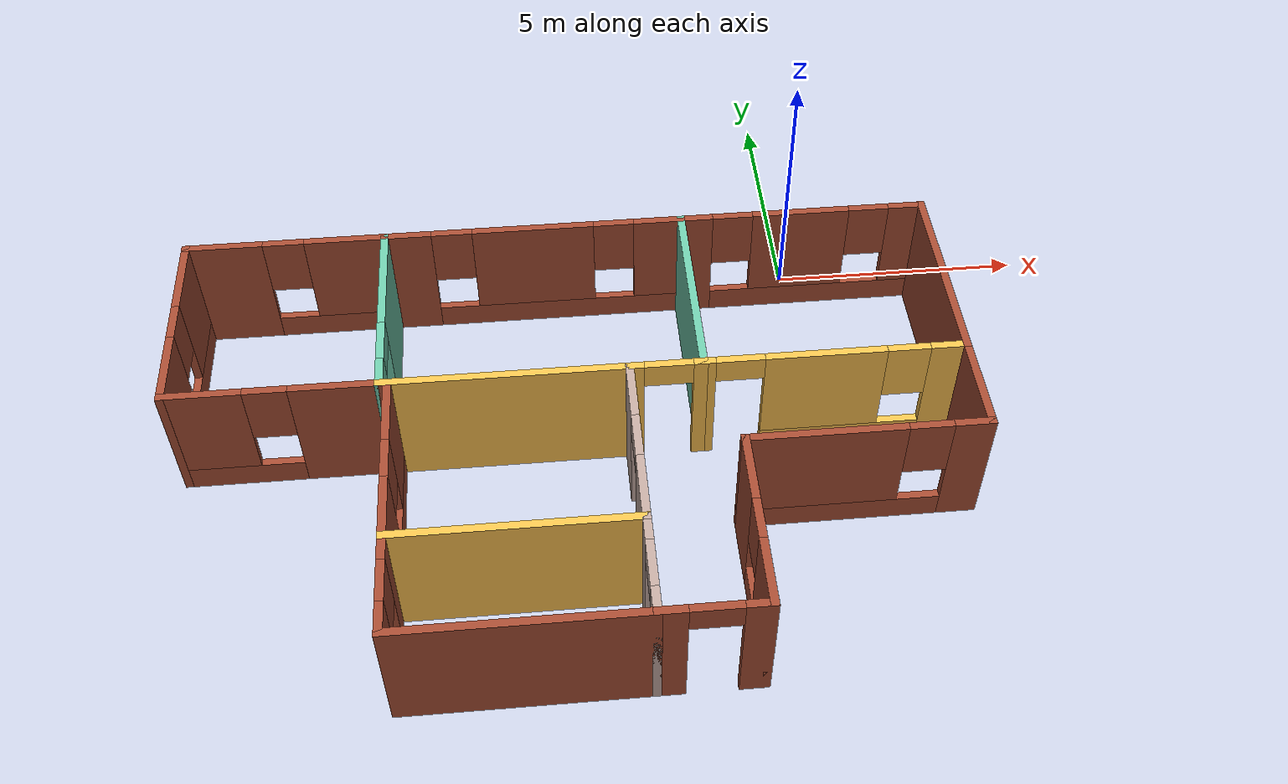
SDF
<?xml version='1.0'?>
<sdf version='1.6'>
  <model name='my_house'>
    <pose frame=''>-4.685 -4.8725 0 0 -0 0</pose>
    <link name='Wall_0'>
      <pose frame=''>-5.35 4.2525 0 0 -0 0</pose>
      <visual name='Wall_0_Visual_0'>
        <pose frame=''>-1.22425 0 1.25 0 -0 0</pose>
        <geometry>
          <box>
            <size>1.5515 0.15 2.5</size>
          </box>
        </geometry>
        <material>
          <script>
            <uri>file://media/materials/scripts/gazebo.material</uri>
            <name>Gazebo/Bricks</name>
          </script>
          <ambient>1 1 1 1</ambient>
        </material>
        <meta>
          <layer>0</layer>
        </meta>
      </visual>
      <collision name='Wall_0_Collision_0'>
        <geometry>
          <box>
            <size>1.5515 0.15 2.5</size>
          </box>
        </geometry>
        <pose frame=''>-1.22425 0 1.25 0 -0 0</pose>
      </collision>
      <visual name='Wall_0_Visual_1'>
        <pose frame=''>0.77575 0 0.25 0 -0 0</pose>
        <geometry>
          <box>
            <size>2.4485 0.15 0.5</size>
          </box>
        </geometry>
        <material>
          <script>
            <uri>file://media/materials/scripts/gazebo.material</uri>
            <name>Gazebo/Bricks</name>
          </script>
          <ambient>1 1 1 1</ambient>
        </material>
        <meta>
          <layer>0</layer>
        </meta>
      </visual>
      <collision name='Wall_0_Collision_1'>
        <geometry>
          <box>
            <size>2.4485 0.15 0.5</size>
          </box>
        </geometry>
        <pose frame=''>0.77575 0 0.25 0 -0 0</pose>
      </collision>
      <visual name='Wall_0_Visual_2'>
        <pose frame=''>1.17575 0 1.5 0 -0 0</pose>
        <geometry>
          <box>
            <size>1.6485 0.15 2</size>
          </box>
        </geometry>
        <material>
          <script>
            <uri>file://media/materials/scripts/gazebo.material</uri>
            <name>Gazebo/Bricks</name>
          </script>
          <ambient>1 1 1 1</ambient>
        </material>
        <meta>
          <layer>0</layer>
        </meta>
      </visual>
      <collision name='Wall_0_Collision_2'>
        <geometry>
          <box>
            <size>1.6485 0.15 2</size>
          </box>
        </geometry>
        <pose frame=''>1.17575 0 1.5 0 -0 0</pose>
      </collision>
      <visual name='Wall_0_Visual_3'>
        <pose frame=''>-0.0485 0 1.9 0 -0 0</pose>
        <geometry>
          <box>
            <size>0.8 0.15 1.2</size>
          </box>
        </geometry>
        <material>
          <script>
            <uri>file://media/materials/scripts/gazebo.material</uri>
            <name>Gazebo/Bricks</name>
          </script>
          <ambient>1 1 1 1</ambient>
        </material>
        <meta>
          <layer>0</layer>
        </meta>
      </visual>
      <collision name='Wall_0_Collision_3'>
        <geometry>
          <box>
            <size>0.8 0.15 1.2</size>
          </box>
        </geometry>
        <pose frame=''>-0.0485 0 1.9 0 -0 0</pose>
      </collision>
    </link>
    <link name='Wall_1'>
      <pose frame=''>-3.425 2.3275 0 0 -0 -1.5708</pose>
      <visual name='Wall_1_Visual_0'>
        <pose frame=''>-0.788444 0 1.25 0 -0 0</pose>
        <geometry>
          <box>
            <size>2.42311 0.15 2.5</size>
          </box>
        </geometry>
        <material>
          <script>
            <uri>file://media/materials/scripts/gazebo.material</uri>
            <name>Gazebo/Grey</name>
          </script>
          <ambient>0.435294 0.796078 0.67451 1</ambient>
        </material>
        <meta>
          <layer>0</layer>
        </meta>
      </visual>
      <collision name='Wall_1_Collision_0'>
        <geometry>
          <box>
            <size>2.42311 0.15 2.5</size>
          </box>
        </geometry>
        <pose frame=''>-0.788444 0 1.25 0 -0 0</pose>
      </collision>
      <visual name='Wall_1_Visual_1'>
        <pose frame=''>1.66156 0 1.25 0 -0 0</pose>
        <geometry>
          <box>
            <size>0.676889 0.15 2.5</size>
          </box>
        </geometry>
        <material>
          <script>
            <uri>file://media/materials/scripts/gazebo.material</uri>
            <name>Gazebo/Grey</name>
          </script>
          <ambient>0.435294 0.796078 0.67451 1</ambient>
        </material>
        <meta>
          <layer>0</layer>
        </meta>
      </visual>
      <collision name='Wall_1_Collision_1'>
        <geometry>
          <box>
            <size>0.676889 0.15 2.5</size>
          </box>
        </geometry>
        <pose frame=''>1.66156 0 1.25 0 -0 0</pose>
      </collision>
      <visual name='Wall_1_Visual_2'>
        <pose frame=''>0.873111 0 2.25 0 -0 0</pose>
        <geometry>
          <box>
            <size>0.9 0.15 0.5</size>
          </box>
        </geometry>
        <material>
          <script>
            <uri>file://media/materials/scripts/gazebo.material</uri>
            <name>Gazebo/Grey</name>
          </script>
          <ambient>0.435294 0.796078 0.67451 1</ambient>
        </material>
        <meta>
          <layer>0</layer>
        </meta>
      </visual>
      <collision name='Wall_1_Collision_2'>
        <geometry>
          <box>
            <size>0.9 0.15 0.5</size>
          </box>
        </geometry>
        <pose frame=''>0.873111 0 2.25 0 -0 0</pose>
      </collision>
    </link>
    <link name='Wall_10'>
      <collision name='Wall_10_Collision'>
        <geometry>
          <box>
            <size>4 0.15 2.5</size>
          </box>
        </geometry>
        <pose frame=''>0 0 1.25 0 -0 0</pose>
      </collision>
      <visual name='Wall_10_Visual'>
        <pose frame=''>0 0 1.25 0 -0 0</pose>
        <geometry>
          <box>
            <size>4 0.15 2.5</size>
          </box>
        </geometry>
        <material>
          <script>
            <uri>file://media/materials/scripts/gazebo.material</uri>
            <name>Gazebo/Bricks</name>
          </script>
          <ambient>1 1 1 1</ambient>
        </material>
        <meta>
          <layer>0</layer>
        </meta>
      </visual>
      <pose frame=''>7.275 2.3275 0 0 -0 -1.5708</pose>
    </link>
    <link name='Wall_11'>
      <pose frame=''>4.85 0.4025 0 0 -0 3.14159</pose>
      <visual name='Wall_11_Visual_0'>
        <pose frame=''>-2.12676 0 1.25 0 -0 0</pose>
        <geometry>
          <box>
            <size>0.746489 0.15 2.5</size>
          </box>
        </geometry>
        <material>
          <script>
            <uri>file://media/materials/scripts/gazebo.material</uri>
            <name>Gazebo/Grey</name>
          </script>
          <ambient>1 0.764706 0.305882 1</ambient>
        </material>
        <meta>
          <layer>0</layer>
        </meta>
      </visual>
      <collision name='Wall_11_Collision_0'>
        <geometry>
          <box>
            <size>0.746489 0.15 2.5</size>
          </box>
        </geometry>
        <pose frame=''>-2.12676 0 1.25 0 -0 0</pose>
      </collision>
      <visual name='Wall_11_Visual_1'>
        <pose frame=''>2.35099 0 1.25 0 -0 0</pose>
        <geometry>
          <box>
            <size>0.298021 0.15 2.5</size>
          </box>
        </geometry>
        <material>
          <script>
            <uri>file://media/materials/scripts/gazebo.material</uri>
            <name>Gazebo/Grey</name>
          </script>
          <ambient>1 0.764706 0.305882 1</ambient>
        </material>
        <meta>
          <layer>0</layer>
        </meta>
      </visual>
      <collision name='Wall_11_Collision_1'>
        <geometry>
          <box>
            <size>0.298021 0.15 2.5</size>
          </box>
        </geometry>
        <pose frame=''>2.35099 0 1.25 0 -0 0</pose>
      </collision>
      <visual name='Wall_11_Visual_2'>
        <pose frame=''>-0.225766 0 0.25 0 -0 0</pose>
        <geometry>
          <box>
            <size>3.05549 0.15 0.5</size>
          </box>
        </geometry>
        <material>
          <script>
            <uri>file://media/materials/scripts/gazebo.material</uri>
            <name>Gazebo/Grey</name>
          </script>
          <ambient>1 0.764706 0.305882 1</ambient>
        </material>
        <meta>
          <layer>0</layer>
        </meta>
      </visual>
      <collision name='Wall_11_Collision_2'>
        <geometry>
          <box>
            <size>3.05549 0.15 0.5</size>
          </box>
        </geometry>
        <pose frame=''>-0.225766 0 0.25 0 -0 0</pose>
      </collision>
      <visual name='Wall_11_Visual_3'>
        <pose frame=''>0.174234 0 1.5 0 -0 0</pose>
        <geometry>
          <box>
            <size>2.25549 0.15 2</size>
          </box>
        </geometry>
        <material>
          <script>
            <uri>file://media/materials/scripts/gazebo.material</uri>
            <name>Gazebo/Grey</name>
          </script>
          <ambient>1 0.764706 0.305882 1</ambient>
        </material>
        <meta>
          <layer>0</layer>
        </meta>
      </visual>
      <collision name='Wall_11_Collision_3'>
        <geometry>
          <box>
            <size>2.25549 0.15 2</size>
          </box>
        </geometry>
        <pose frame=''>0.174234 0 1.5 0 -0 0</pose>
      </collision>
      <visual name='Wall_11_Visual_4'>
        <pose frame=''>-1.35351 0 1.9 0 -0 0</pose>
        <geometry>
          <box>
            <size>0.8 0.15 1.2</size>
          </box>
        </geometry>
        <material>
          <script>
            <uri>file://media/materials/scripts/gazebo.material</uri>
            <name>Gazebo/Grey</name>
          </script>
          <ambient>1 0.764706 0.305882 1</ambient>
        </material>
        <meta>
          <layer>0</layer>
        </meta>
      </visual>
      <collision name='Wall_11_Collision_4'>
        <geometry>
          <box>
            <size>0.8 0.15 1.2</size>
          </box>
        </geometry>
        <pose frame=''>-1.35351 0 1.9 0 -0 0</pose>
      </collision>
      <visual name='Wall_11_Visual_5'>
        <pose frame=''>1.75198 0 2.25 0 -0 0</pose>
        <geometry>
          <box>
            <size>0.9 0.15 0.5</size>
          </box>
        </geometry>
        <material>
          <script>
            <uri>file://media/materials/scripts/gazebo.material</uri>
            <name>Gazebo/Grey</name>
          </script>
          <ambient>1 0.764706 0.305882 1</ambient>
        </material>
        <meta>
          <layer>0</layer>
        </meta>
      </visual>
      <collision name='Wall_11_Collision_5'>
        <geometry>
          <box>
            <size>0.9 0.15 0.5</size>
          </box>
        </geometry>
        <pose frame=''>1.75198 0 2.25 0 -0 0</pose>
      </collision>
    </link>
    <link name='Wall_13'>
      <collision name='Wall_13_Collision'>
        <geometry>
          <box>
            <size>2 0.15 2.5</size>
          </box>
        </geometry>
        <pose frame=''>0 0 1.25 0 -0 0</pose>
      </collision>
      <visual name='Wall_13_Visual'>
        <pose frame=''>0 0 1.25 0 -0 0</pose>
        <geometry>
          <box>
            <size>2 0.15 2.5</size>
          </box>
        </geometry>
        <material>
          <script>
            <uri>file://media/materials/scripts/gazebo.material</uri>
            <name>Gazebo/Bricks</name>
          </script>
          <ambient>1 1 1 1</ambient>
        </material>
        <meta>
          <layer>0</layer>
        </meta>
      </visual>
      <pose frame=''>7.275 -0.5225 0 0 -0 -1.5708</pose>
    </link>
    <link name='Wall_16'>
      <pose frame=''>5.1 -1.4475 0 0 -0 3.14159</pose>
      <visual name='Wall_16_Visual_0'>
        <pose frame=''>-1.87805 0 1.25 0 -0 0</pose>
        <geometry>
          <box>
            <size>0.743896 0.15 2.5</size>
          </box>
        </geometry>
        <material>
          <script>
            <uri>file://media/materials/scripts/gazebo.material</uri>
            <name>Gazebo/Bricks</name>
          </script>
          <ambient>1 1 1 1</ambient>
        </material>
        <meta>
          <layer>0</layer>
        </meta>
      </visual>
      <collision name='Wall_16_Collision_0'>
        <geometry>
          <box>
            <size>0.743896 0.15 2.5</size>
          </box>
        </geometry>
        <pose frame=''>-1.87805 0 1.25 0 -0 0</pose>
      </collision>
      <visual name='Wall_16_Visual_1'>
        <pose frame=''>0.371948 0 0.25 0 -0 0</pose>
        <geometry>
          <box>
            <size>3.7561 0.15 0.5</size>
          </box>
        </geometry>
        <material>
          <script>
            <uri>file://media/materials/scripts/gazebo.material</uri>
            <name>Gazebo/Bricks</name>
          </script>
          <ambient>1 1 1 1</ambient>
        </material>
        <meta>
          <layer>0</layer>
        </meta>
      </visual>
      <collision name='Wall_16_Collision_1'>
        <geometry>
          <box>
            <size>3.7561 0.15 0.5</size>
          </box>
        </geometry>
        <pose frame=''>0.371948 0 0.25 0 -0 0</pose>
      </collision>
      <visual name='Wall_16_Visual_2'>
        <pose frame=''>0.771948 0 1.5 0 -0 0</pose>
        <geometry>
          <box>
            <size>2.9561 0.15 2</size>
          </box>
        </geometry>
        <material>
          <script>
            <uri>file://media/materials/scripts/gazebo.material</uri>
            <name>Gazebo/Bricks</name>
          </script>
          <ambient>1 1 1 1</ambient>
        </material>
        <meta>
          <layer>0</layer>
        </meta>
      </visual>
      <collision name='Wall_16_Collision_2'>
        <geometry>
          <box>
            <size>2.9561 0.15 2</size>
          </box>
        </geometry>
        <pose frame=''>0.771948 0 1.5 0 -0 0</pose>
      </collision>
      <visual name='Wall_16_Visual_3'>
        <pose frame=''>-1.1061 0 1.9 0 -0 0</pose>
        <geometry>
          <box>
            <size>0.8 0.15 1.2</size>
          </box>
        </geometry>
        <material>
          <script>
            <uri>file://media/materials/scripts/gazebo.material</uri>
            <name>Gazebo/Bricks</name>
          </script>
          <ambient>1 1 1 1</ambient>
        </material>
        <meta>
          <layer>0</layer>
        </meta>
      </visual>
      <collision name='Wall_16_Collision_3'>
        <geometry>
          <box>
            <size>0.8 0.15 1.2</size>
          </box>
        </geometry>
        <pose frame=''>-1.1061 0 1.9 0 -0 0</pose>
      </collision>
    </link>
    <link name='Wall_17'>
      <pose frame=''>2.925 -3.1225 0 0 -0 -1.5708</pose>
      <visual name='Wall_17_Visual_0'>
        <pose frame=''>-1.05852 0 1.25 0 -0 0</pose>
        <geometry>
          <box>
            <size>1.38296 0.15 2.5</size>
          </box>
        </geometry>
        <material>
          <script>
            <uri>file://media/materials/scripts/gazebo.material</uri>
            <name>Gazebo/Bricks</name>
          </script>
          <ambient>1 1 1 1</ambient>
        </material>
        <meta>
          <layer>0</layer>
        </meta>
      </visual>
      <collision name='Wall_17_Collision_0'>
        <geometry>
          <box>
            <size>1.38296 0.15 2.5</size>
          </box>
        </geometry>
        <pose frame=''>-1.05852 0 1.25 0 -0 0</pose>
      </collision>
      <visual name='Wall_17_Visual_1'>
        <pose frame=''>0.691482 0 0.25 0 -0 0</pose>
        <geometry>
          <box>
            <size>2.11704 0.15 0.5</size>
          </box>
        </geometry>
        <material>
          <script>
            <uri>file://media/materials/scripts/gazebo.material</uri>
            <name>Gazebo/Bricks</name>
          </script>
          <ambient>1 1 1 1</ambient>
        </material>
        <meta>
          <layer>0</layer>
        </meta>
      </visual>
      <collision name='Wall_17_Collision_1'>
        <geometry>
          <box>
            <size>2.11704 0.15 0.5</size>
          </box>
        </geometry>
        <pose frame=''>0.691482 0 0.25 0 -0 0</pose>
      </collision>
      <visual name='Wall_17_Visual_2'>
        <pose frame=''>1.09148 0 1.5 0 -0 0</pose>
        <geometry>
          <box>
            <size>1.31703 0.15 2</size>
          </box>
        </geometry>
        <material>
          <script>
            <uri>file://media/materials/scripts/gazebo.material</uri>
            <name>Gazebo/Bricks</name>
          </script>
          <ambient>1 1 1 1</ambient>
        </material>
        <meta>
          <layer>0</layer>
        </meta>
      </visual>
      <collision name='Wall_17_Collision_2'>
        <geometry>
          <box>
            <size>1.31703 0.15 2</size>
          </box>
        </geometry>
        <pose frame=''>1.09148 0 1.5 0 -0 0</pose>
      </collision>
      <visual name='Wall_17_Visual_3'>
        <pose frame=''>0.032965 0 1.9 0 -0 0</pose>
        <geometry>
          <box>
            <size>0.8 0.15 1.2</size>
          </box>
        </geometry>
        <material>
          <script>
            <uri>file://media/materials/scripts/gazebo.material</uri>
            <name>Gazebo/Bricks</name>
          </script>
          <ambient>1 1 1 1</ambient>
        </material>
        <meta>
          <layer>0</layer>
        </meta>
      </visual>
      <collision name='Wall_17_Collision_3'>
        <geometry>
          <box>
            <size>0.8 0.15 1.2</size>
          </box>
        </geometry>
        <pose frame=''>0.032965 0 1.9 0 -0 0</pose>
      </collision>
    </link>
    <link name='Wall_18'>
      <pose frame=''>2 -4.7975 0 0 -0 3.14159</pose>
      <visual name='Wall_18_Visual_0'>
        <pose frame=''>-0.73293 0 1.25 0 -0 0</pose>
        <geometry>
          <box>
            <size>0.53414 0.15 2.5</size>
          </box>
        </geometry>
        <material>
          <script>
            <uri>file://media/materials/scripts/gazebo.material</uri>
            <name>Gazebo/Bricks</name>
          </script>
          <ambient>1 0.764706 0.305882 1</ambient>
        </material>
        <meta>
          <layer>0</layer>
        </meta>
      </visual>
      <collision name='Wall_18_Collision_0'>
        <geometry>
          <box>
            <size>0.53414 0.15 2.5</size>
          </box>
        </geometry>
        <pose frame=''>-0.73293 0 1.25 0 -0 0</pose>
      </collision>
      <visual name='Wall_18_Visual_1'>
        <pose frame=''>0.71707 0 1.25 0 -0 0</pose>
        <geometry>
          <box>
            <size>0.56586 0.15 2.5</size>
          </box>
        </geometry>
        <material>
          <script>
            <uri>file://media/materials/scripts/gazebo.material</uri>
            <name>Gazebo/Bricks</name>
          </script>
          <ambient>1 0.764706 0.305882 1</ambient>
        </material>
        <meta>
          <layer>0</layer>
        </meta>
      </visual>
      <collision name='Wall_18_Collision_1'>
        <geometry>
          <box>
            <size>0.56586 0.15 2.5</size>
          </box>
        </geometry>
        <pose frame=''>0.71707 0 1.25 0 -0 0</pose>
      </collision>
      <visual name='Wall_18_Visual_2'>
        <pose frame=''>-0.01586 0 2.25 0 -0 0</pose>
        <geometry>
          <box>
            <size>0.9 0.15 0.5</size>
          </box>
        </geometry>
        <material>
          <script>
            <uri>file://media/materials/scripts/gazebo.material</uri>
            <name>Gazebo/Bricks</name>
          </script>
          <ambient>1 0.764706 0.305882 1</ambient>
        </material>
        <meta>
          <layer>0</layer>
        </meta>
      </visual>
      <collision name='Wall_18_Collision_2'>
        <geometry>
          <box>
            <size>0.9 0.15 0.5</size>
          </box>
        </geometry>
        <pose frame=''>-0.01586 0 2.25 0 -0 0</pose>
      </collision>
    </link>
    <link name='Wall_19'>
      <pose frame=''>1.075 -3.8725 0 0 -0 1.5708</pose>
      <visual name='Wall_19_Visual_0'>
        <pose frame=''>-0.726505 0 1.25 0 -0 0</pose>
        <geometry>
          <box>
            <size>0.54699 0.15 2.5</size>
          </box>
        </geometry>
        <material>
          <script>
            <uri>file://media/materials/scripts/gazebo.material</uri>
            <name>Gazebo/Grey</name>
          </script>
          <ambient>0.760784 0.662745 0.627451 1</ambient>
        </material>
        <meta>
          <layer>0</layer>
        </meta>
      </visual>
      <collision name='Wall_19_Collision_0'>
        <geometry>
          <box>
            <size>0.54699 0.15 2.5</size>
          </box>
        </geometry>
        <pose frame=''>-0.726505 0 1.25 0 -0 0</pose>
      </collision>
      <visual name='Wall_19_Visual_1'>
        <pose frame=''>0.723495 0 1.25 0 -0 0</pose>
        <geometry>
          <box>
            <size>0.55301 0.15 2.5</size>
          </box>
        </geometry>
        <material>
          <script>
            <uri>file://media/materials/scripts/gazebo.material</uri>
            <name>Gazebo/Grey</name>
          </script>
          <ambient>0.760784 0.662745 0.627451 1</ambient>
        </material>
        <meta>
          <layer>0</layer>
        </meta>
      </visual>
      <collision name='Wall_19_Collision_1'>
        <geometry>
          <box>
            <size>0.55301 0.15 2.5</size>
          </box>
        </geometry>
        <pose frame=''>0.723495 0 1.25 0 -0 0</pose>
      </collision>
      <visual name='Wall_19_Visual_2'>
        <pose frame=''>-0.00301 0 2.25 0 -0 0</pose>
        <geometry>
          <box>
            <size>0.9 0.15 0.5</size>
          </box>
        </geometry>
        <material>
          <script>
            <uri>file://media/materials/scripts/gazebo.material</uri>
            <name>Gazebo/Grey</name>
          </script>
          <ambient>0.760784 0.662745 0.627451 1</ambient>
        </material>
        <meta>
          <layer>0</layer>
        </meta>
      </visual>
      <collision name='Wall_19_Collision_2'>
        <geometry>
          <box>
            <size>0.9 0.15 0.5</size>
          </box>
        </geometry>
        <pose frame=''>-0.00301 0 2.25 0 -0 0</pose>
      </collision>
    </link>
    <link name='Wall_2'>
      <pose frame=''>-5.35 0.4025 0 0 -0 3.14159</pose>
      <visual name='Wall_2_Visual_0'>
        <pose frame=''>-1.15275 0 1.25 0 -0 0</pose>
        <geometry>
          <box>
            <size>1.6945 0.15 2.5</size>
          </box>
        </geometry>
        <material>
          <script>
            <uri>file://media/materials/scripts/gazebo.material</uri>
            <name>Gazebo/Bricks</name>
          </script>
          <ambient>1 1 1 1</ambient>
        </material>
        <meta>
          <layer>0</layer>
        </meta>
      </visual>
      <collision name='Wall_2_Collision_0'>
        <geometry>
          <box>
            <size>1.6945 0.15 2.5</size>
          </box>
        </geometry>
        <pose frame=''>-1.15275 0 1.25 0 -0 0</pose>
      </collision>
      <visual name='Wall_2_Visual_1'>
        <pose frame=''>0.84725 0 0.25 0 -0 0</pose>
        <geometry>
          <box>
            <size>2.3055 0.15 0.5</size>
          </box>
        </geometry>
        <material>
          <script>
            <uri>file://media/materials/scripts/gazebo.material</uri>
            <name>Gazebo/Bricks</name>
          </script>
          <ambient>1 1 1 1</ambient>
        </material>
        <meta>
          <layer>0</layer>
        </meta>
      </visual>
      <collision name='Wall_2_Collision_1'>
        <geometry>
          <box>
            <size>2.3055 0.15 0.5</size>
          </box>
        </geometry>
        <pose frame=''>0.84725 0 0.25 0 -0 0</pose>
      </collision>
      <visual name='Wall_2_Visual_2'>
        <pose frame=''>1.24725 0 1.5 0 -0 0</pose>
        <geometry>
          <box>
            <size>1.5055 0.15 2</size>
          </box>
        </geometry>
        <material>
          <script>
            <uri>file://media/materials/scripts/gazebo.material</uri>
            <name>Gazebo/Bricks</name>
          </script>
          <ambient>1 1 1 1</ambient>
        </material>
        <meta>
          <layer>0</layer>
        </meta>
      </visual>
      <collision name='Wall_2_Collision_2'>
        <geometry>
          <box>
            <size>1.5055 0.15 2</size>
          </box>
        </geometry>
        <pose frame=''>1.24725 0 1.5 0 -0 0</pose>
      </collision>
      <visual name='Wall_2_Visual_3'>
        <pose frame=''>0.094501 0 1.9 0 -0 0</pose>
        <geometry>
          <box>
            <size>0.8 0.15 1.2</size>
          </box>
        </geometry>
        <material>
          <script>
            <uri>file://media/materials/scripts/gazebo.material</uri>
            <name>Gazebo/Bricks</name>
          </script>
          <ambient>1 1 1 1</ambient>
        </material>
        <meta>
          <layer>0</layer>
        </meta>
      </visual>
      <collision name='Wall_2_Collision_3'>
        <geometry>
          <box>
            <size>0.8 0.15 1.2</size>
          </box>
        </geometry>
        <pose frame=''>0.094501 0 1.9 0 -0 0</pose>
      </collision>
    </link>
    <link name='Wall_20'>
      <collision name='Wall_20_Collision'>
        <geometry>
          <box>
            <size>4.5 0.15 2.5</size>
          </box>
        </geometry>
        <pose frame=''>0 0 1.25 0 -0 0</pose>
      </collision>
      <visual name='Wall_20_Visual'>
        <pose frame=''>0 0 1.25 0 -0 0</pose>
        <geometry>
          <box>
            <size>4.5 0.15 2.5</size>
          </box>
        </geometry>
        <material>
          <script>
            <uri>file://media/materials/scripts/gazebo.material</uri>
            <name>Gazebo/Grey</name>
          </script>
          <ambient>1 0.764706 0.305882 1</ambient>
        </material>
        <meta>
          <layer>0</layer>
        </meta>
      </visual>
      <pose frame=''>-1.1 -2.9475 0 0 -0 3.14159</pose>
    </link>
    <link name='Wall_21'>
      <pose frame=''>-3.275 -3.8725 0 0 -0 -1.5708</pose>
      <visual name='Wall_21_Visual_0'>
        <pose frame=''>-0.724517 0 1.25 0 -0 0</pose>
        <geometry>
          <box>
            <size>0.550967 0.15 2.5</size>
          </box>
        </geometry>
        <material>
          <script>
            <uri>file://media/materials/scripts/gazebo.material</uri>
            <name>Gazebo/Bricks</name>
          </script>
          <ambient>1 1 1 1</ambient>
        </material>
        <meta>
          <layer>0</layer>
        </meta>
      </visual>
      <collision name='Wall_21_Collision_0'>
        <geometry>
          <box>
            <size>0.550967 0.15 2.5</size>
          </box>
        </geometry>
        <pose frame=''>-0.724517 0 1.25 0 -0 0</pose>
      </collision>
      <visual name='Wall_21_Visual_1'>
        <pose frame=''>0.275483 0 0.25 0 -0 0</pose>
        <geometry>
          <box>
            <size>1.44903 0.15 0.5</size>
          </box>
        </geometry>
        <material>
          <script>
            <uri>file://media/materials/scripts/gazebo.material</uri>
            <name>Gazebo/Bricks</name>
          </script>
          <ambient>1 1 1 1</ambient>
        </material>
        <meta>
          <layer>0</layer>
        </meta>
      </visual>
      <collision name='Wall_21_Collision_1'>
        <geometry>
          <box>
            <size>1.44903 0.15 0.5</size>
          </box>
        </geometry>
        <pose frame=''>0.275483 0 0.25 0 -0 0</pose>
      </collision>
      <visual name='Wall_21_Visual_2'>
        <pose frame=''>0.675483 0 1.5 0 -0 0</pose>
        <geometry>
          <box>
            <size>0.649033 0.15 2</size>
          </box>
        </geometry>
        <material>
          <script>
            <uri>file://media/materials/scripts/gazebo.material</uri>
            <name>Gazebo/Bricks</name>
          </script>
          <ambient>1 1 1 1</ambient>
        </material>
        <meta>
          <layer>0</layer>
        </meta>
      </visual>
      <collision name='Wall_21_Collision_2'>
        <geometry>
          <box>
            <size>0.649033 0.15 2</size>
          </box>
        </geometry>
        <pose frame=''>0.675483 0 1.5 0 -0 0</pose>
      </collision>
      <visual name='Wall_21_Visual_3'>
        <pose frame=''>-0.049033 0 1.9 0 -0 0</pose>
        <geometry>
          <box>
            <size>0.8 0.15 1.2</size>
          </box>
        </geometry>
        <material>
          <script>
            <uri>file://media/materials/scripts/gazebo.material</uri>
            <name>Gazebo/Bricks</name>
          </script>
          <ambient>1 1 1 1</ambient>
        </material>
        <meta>
          <layer>0</layer>
        </meta>
      </visual>
      <collision name='Wall_21_Collision_3'>
        <geometry>
          <box>
            <size>0.8 0.15 1.2</size>
          </box>
        </geometry>
        <pose frame=''>-0.049033 0 1.9 0 -0 0</pose>
      </collision>
    </link>
    <link name='Wall_22'>
      <collision name='Wall_22_Collision'>
        <geometry>
          <box>
            <size>4.5 0.15 2.5</size>
          </box>
        </geometry>
        <pose frame=''>0 0 1.25 0 -0 0</pose>
      </collision>
      <visual name='Wall_22_Visual'>
        <pose frame=''>0 0 1.25 0 -0 0</pose>
        <geometry>
          <box>
            <size>4.5 0.15 2.5</size>
          </box>
        </geometry>
        <material>
          <script>
            <uri>file://media/materials/scripts/gazebo.material</uri>
            <name>Gazebo/Bricks</name>
          </script>
          <ambient>1 1 1 1</ambient>
        </material>
        <meta>
          <layer>0</layer>
        </meta>
      </visual>
      <pose frame=''>-1.1 -4.7975 0 0 -0 0</pose>
    </link>
    <link name='Wall_24'>
      <pose frame=''>1.075 -1.2725 0 0 -0 1.5708</pose>
      <visual name='Wall_24_Visual_0'>
        <pose frame=''>-1.06784 0 1.25 0 -0 0</pose>
        <geometry>
          <box>
            <size>1.36432 0.15 2.5</size>
          </box>
        </geometry>
        <material>
          <script>
            <uri>file://media/materials/scripts/gazebo.material</uri>
            <name>Gazebo/Grey</name>
          </script>
          <ambient>0.760784 0.662745 0.627451 1</ambient>
        </material>
        <meta>
          <layer>0</layer>
        </meta>
      </visual>
      <collision name='Wall_24_Collision_0'>
        <geometry>
          <box>
            <size>1.36432 0.15 2.5</size>
          </box>
        </geometry>
        <pose frame=''>-1.06784 0 1.25 0 -0 0</pose>
      </collision>
      <visual name='Wall_24_Visual_1'>
        <pose frame=''>1.13216 0 1.25 0 -0 0</pose>
        <geometry>
          <box>
            <size>1.23568 0.15 2.5</size>
          </box>
        </geometry>
        <material>
          <script>
            <uri>file://media/materials/scripts/gazebo.material</uri>
            <name>Gazebo/Grey</name>
          </script>
          <ambient>0.760784 0.662745 0.627451 1</ambient>
        </material>
        <meta>
          <layer>0</layer>
        </meta>
      </visual>
      <collision name='Wall_24_Collision_1'>
        <geometry>
          <box>
            <size>1.23568 0.15 2.5</size>
          </box>
        </geometry>
        <pose frame=''>1.13216 0 1.25 0 -0 0</pose>
      </collision>
      <visual name='Wall_24_Visual_2'>
        <pose frame=''>0.064318 0 2.25 0 -0 0</pose>
        <geometry>
          <box>
            <size>0.9 0.15 0.5</size>
          </box>
        </geometry>
        <material>
          <script>
            <uri>file://media/materials/scripts/gazebo.material</uri>
            <name>Gazebo/Grey</name>
          </script>
          <ambient>0.760784 0.662745 0.627451 1</ambient>
        </material>
        <meta>
          <layer>0</layer>
        </meta>
      </visual>
      <collision name='Wall_24_Collision_2'>
        <geometry>
          <box>
            <size>0.9 0.15 0.5</size>
          </box>
        </geometry>
        <pose frame=''>0.064318 0 2.25 0 -0 0</pose>
      </collision>
    </link>
    <link name='Wall_26'>
      <pose frame=''>-3.275 -1.2725 0 0 -0 1.5708</pose>
      <visual name='Wall_26_Visual_0'>
        <pose frame=''>-1.10238 0 1.25 0 -0 0</pose>
        <geometry>
          <box>
            <size>1.29524 0.15 2.5</size>
          </box>
        </geometry>
        <material>
          <script>
            <uri>file://media/materials/scripts/gazebo.material</uri>
            <name>Gazebo/Bricks</name>
          </script>
          <ambient>1 1 1 1</ambient>
        </material>
        <meta>
          <layer>0</layer>
        </meta>
      </visual>
      <collision name='Wall_26_Collision_0'>
        <geometry>
          <box>
            <size>1.29524 0.15 2.5</size>
          </box>
        </geometry>
        <pose frame=''>-1.10238 0 1.25 0 -0 0</pose>
      </collision>
      <visual name='Wall_26_Visual_1'>
        <pose frame=''>0.647619 0 0.25 0 -0 0</pose>
        <geometry>
          <box>
            <size>2.20476 0.15 0.5</size>
          </box>
        </geometry>
        <material>
          <script>
            <uri>file://media/materials/scripts/gazebo.material</uri>
            <name>Gazebo/Bricks</name>
          </script>
          <ambient>1 1 1 1</ambient>
        </material>
        <meta>
          <layer>0</layer>
        </meta>
      </visual>
      <collision name='Wall_26_Collision_1'>
        <geometry>
          <box>
            <size>2.20476 0.15 0.5</size>
          </box>
        </geometry>
        <pose frame=''>0.647619 0 0.25 0 -0 0</pose>
      </collision>
      <visual name='Wall_26_Visual_2'>
        <pose frame=''>1.04762 0 1.5 0 -0 0</pose>
        <geometry>
          <box>
            <size>1.40476 0.15 2</size>
          </box>
        </geometry>
        <material>
          <script>
            <uri>file://media/materials/scripts/gazebo.material</uri>
            <name>Gazebo/Bricks</name>
          </script>
          <ambient>1 1 1 1</ambient>
        </material>
        <meta>
          <layer>0</layer>
        </meta>
      </visual>
      <collision name='Wall_26_Collision_2'>
        <geometry>
          <box>
            <size>1.40476 0.15 2</size>
          </box>
        </geometry>
        <pose frame=''>1.04762 0 1.5 0 -0 0</pose>
      </collision>
      <visual name='Wall_26_Visual_3'>
        <pose frame=''>-0.054763 0 1.9 0 -0 0</pose>
        <geometry>
          <box>
            <size>0.8 0.15 1.2</size>
          </box>
        </geometry>
        <material>
          <script>
            <uri>file://media/materials/scripts/gazebo.material</uri>
            <name>Gazebo/Bricks</name>
          </script>
          <ambient>1 1 1 1</ambient>
        </material>
        <meta>
          <layer>0</layer>
        </meta>
      </visual>
      <collision name='Wall_26_Collision_3'>
        <geometry>
          <box>
            <size>0.8 0.15 1.2</size>
          </box>
        </geometry>
        <pose frame=''>-0.054763 0 1.9 0 -0 0</pose>
      </collision>
    </link>
    <link name='Wall_3'>
      <pose frame=''>-7.275 2.3275 0 0 -0 1.5708</pose>
      <visual name='Wall_3_Visual_0'>
        <pose frame=''>-1.22975 0 1.25 0 -0 0</pose>
        <geometry>
          <box>
            <size>1.5405 0.15 2.5</size>
          </box>
        </geometry>
        <material>
          <script>
            <uri>file://media/materials/scripts/gazebo.material</uri>
            <name>Gazebo/Bricks</name>
          </script>
          <ambient>1 1 1 1</ambient>
        </material>
        <meta>
          <layer>0</layer>
        </meta>
      </visual>
      <collision name='Wall_3_Collision_0'>
        <geometry>
          <box>
            <size>1.5405 0.15 2.5</size>
          </box>
        </geometry>
        <pose frame=''>-1.22975 0 1.25 0 -0 0</pose>
      </collision>
      <visual name='Wall_3_Visual_1'>
        <pose frame=''>0.77025 0 0.25 0 -0 0</pose>
        <geometry>
          <box>
            <size>2.4595 0.15 0.5</size>
          </box>
        </geometry>
        <material>
          <script>
            <uri>file://media/materials/scripts/gazebo.material</uri>
            <name>Gazebo/Bricks</name>
          </script>
          <ambient>1 1 1 1</ambient>
        </material>
        <meta>
          <layer>0</layer>
        </meta>
      </visual>
      <collision name='Wall_3_Collision_1'>
        <geometry>
          <box>
            <size>2.4595 0.15 0.5</size>
          </box>
        </geometry>
        <pose frame=''>0.77025 0 0.25 0 -0 0</pose>
      </collision>
      <visual name='Wall_3_Visual_2'>
        <pose frame=''>1.17025 0 1.5 0 -0 0</pose>
        <geometry>
          <box>
            <size>1.6595 0.15 2</size>
          </box>
        </geometry>
        <material>
          <script>
            <uri>file://media/materials/scripts/gazebo.material</uri>
            <name>Gazebo/Bricks</name>
          </script>
          <ambient>1 1 1 1</ambient>
        </material>
        <meta>
          <layer>0</layer>
        </meta>
      </visual>
      <collision name='Wall_3_Collision_2'>
        <geometry>
          <box>
            <size>1.6595 0.15 2</size>
          </box>
        </geometry>
        <pose frame=''>1.17025 0 1.5 0 -0 0</pose>
      </collision>
      <visual name='Wall_3_Visual_3'>
        <pose frame=''>-0.0595 0 1.9 0 -0 0</pose>
        <geometry>
          <box>
            <size>0.8 0.15 1.2</size>
          </box>
        </geometry>
        <material>
          <script>
            <uri>file://media/materials/scripts/gazebo.material</uri>
            <name>Gazebo/Bricks</name>
          </script>
          <ambient>1 1 1 1</ambient>
        </material>
        <meta>
          <layer>0</layer>
        </meta>
      </visual>
      <collision name='Wall_3_Collision_3'>
        <geometry>
          <box>
            <size>0.8 0.15 1.2</size>
          </box>
        </geometry>
        <pose frame=''>-0.0595 0 1.9 0 -0 0</pose>
      </collision>
    </link>
    <link name='Wall_5'>
      <pose frame=''>-0.5 4.2525 0 0 -0 0</pose>
      <visual name='Wall_5_Visual_0'>
        <pose frame=''>-2.5105 0 1.25 0 -0 0</pose>
        <geometry>
          <box>
            <size>0.979 0.15 2.5</size>
          </box>
        </geometry>
        <material>
          <script>
            <uri>file://media/materials/scripts/gazebo.material</uri>
            <name>Gazebo/Bricks</name>
          </script>
          <ambient>1 1 1 1</ambient>
        </material>
        <meta>
          <layer>0</layer>
        </meta>
      </visual>
      <collision name='Wall_5_Collision_0'>
        <geometry>
          <box>
            <size>0.979 0.15 2.5</size>
          </box>
        </geometry>
        <pose frame=''>-2.5105 0 1.25 0 -0 0</pose>
      </collision>
      <visual name='Wall_5_Visual_1'>
        <pose frame=''>0.4895 0 0.25 0 -0 0</pose>
        <geometry>
          <box>
            <size>5.021 0.15 0.5</size>
          </box>
        </geometry>
        <material>
          <script>
            <uri>file://media/materials/scripts/gazebo.material</uri>
            <name>Gazebo/Bricks</name>
          </script>
          <ambient>1 1 1 1</ambient>
        </material>
        <meta>
          <layer>0</layer>
        </meta>
      </visual>
      <collision name='Wall_5_Collision_1'>
        <geometry>
          <box>
            <size>5.021 0.15 0.5</size>
          </box>
        </geometry>
        <pose frame=''>0.4895 0 0.25 0 -0 0</pose>
      </collision>
      <visual name='Wall_5_Visual_2'>
        <pose frame=''>-0.0225 0 1.5 0 -0 0</pose>
        <geometry>
          <box>
            <size>2.397 0.15 2</size>
          </box>
        </geometry>
        <material>
          <script>
            <uri>file://media/materials/scripts/gazebo.material</uri>
            <name>Gazebo/Bricks</name>
          </script>
          <ambient>1 1 1 1</ambient>
        </material>
        <meta>
          <layer>0</layer>
        </meta>
      </visual>
      <collision name='Wall_5_Collision_2'>
        <geometry>
          <box>
            <size>2.397 0.15 2</size>
          </box>
        </geometry>
        <pose frame=''>-0.0225 0 1.5 0 -0 0</pose>
      </collision>
      <visual name='Wall_5_Visual_3'>
        <pose frame=''>2.488 0 1.5 0 -0 0</pose>
        <geometry>
          <box>
            <size>1.024 0.15 2</size>
          </box>
        </geometry>
        <material>
          <script>
            <uri>file://media/materials/scripts/gazebo.material</uri>
            <name>Gazebo/Bricks</name>
          </script>
          <ambient>1 1 1 1</ambient>
        </material>
        <meta>
          <layer>0</layer>
        </meta>
      </visual>
      <collision name='Wall_5_Collision_3'>
        <geometry>
          <box>
            <size>1.024 0.15 2</size>
          </box>
        </geometry>
        <pose frame=''>2.488 0 1.5 0 -0 0</pose>
      </collision>
      <visual name='Wall_5_Visual_4'>
        <pose frame=''>-1.621 0 1.9 0 -0 0</pose>
        <geometry>
          <box>
            <size>0.8 0.15 1.2</size>
          </box>
        </geometry>
        <material>
          <script>
            <uri>file://media/materials/scripts/gazebo.material</uri>
            <name>Gazebo/Bricks</name>
          </script>
          <ambient>1 1 1 1</ambient>
        </material>
        <meta>
          <layer>0</layer>
        </meta>
      </visual>
      <collision name='Wall_5_Collision_4'>
        <geometry>
          <box>
            <size>0.8 0.15 1.2</size>
          </box>
        </geometry>
        <pose frame=''>-1.621 0 1.9 0 -0 0</pose>
      </collision>
      <visual name='Wall_5_Visual_5'>
        <pose frame=''>1.576 0 1.9 0 -0 0</pose>
        <geometry>
          <box>
            <size>0.8 0.15 1.2</size>
          </box>
        </geometry>
        <material>
          <script>
            <uri>file://media/materials/scripts/gazebo.material</uri>
            <name>Gazebo/Bricks</name>
          </script>
          <ambient>1 1 1 1</ambient>
        </material>
        <meta>
          <layer>0</layer>
        </meta>
      </visual>
      <collision name='Wall_5_Collision_5'>
        <geometry>
          <box>
            <size>0.8 0.15 1.2</size>
          </box>
        </geometry>
        <pose frame=''>1.576 0 1.9 0 -0 0</pose>
      </collision>
    </link>
    <link name='Wall_6'>
      <collision name='Wall_6_Collision'>
        <geometry>
          <box>
            <size>4 0.15 2.5</size>
          </box>
        </geometry>
        <pose frame=''>0 0 1.25 0 -0 0</pose>
      </collision>
      <visual name='Wall_6_Visual'>
        <pose frame=''>0 0 1.25 0 -0 0</pose>
        <geometry>
          <box>
            <size>4 0.15 2.5</size>
          </box>
        </geometry>
        <material>
          <script>
            <uri>file://media/materials/scripts/gazebo.material</uri>
            <name>Gazebo/Grey</name>
          </script>
          <ambient>0.435294 0.796078 0.67451 1</ambient>
        </material>
        <meta>
          <layer>0</layer>
        </meta>
      </visual>
      <pose frame=''>2.425 2.3275 0 0 -0 -1.5708</pose>
    </link>
    <link name='Wall_7'>
      <pose frame=''>-0.5 0.4025 0 0 -0 3.14159</pose>
      <visual name='Wall_7_Visual_0'>
        <pose frame=''>-2.87028 0 1.25 0 -0 0</pose>
        <geometry>
          <box>
            <size>0.259436 0.15 2.5</size>
          </box>
        </geometry>
        <material>
          <script>
            <uri>file://media/materials/scripts/gazebo.material</uri>
            <name>Gazebo/Grey</name>
          </script>
          <ambient>1 0.764706 0.305882 1</ambient>
        </material>
        <meta>
          <layer>0</layer>
        </meta>
      </visual>
      <collision name='Wall_7_Collision_0'>
        <geometry>
          <box>
            <size>0.259436 0.15 2.5</size>
          </box>
        </geometry>
        <pose frame=''>-2.87028 0 1.25 0 -0 0</pose>
      </collision>
      <visual name='Wall_7_Visual_1'>
        <pose frame=''>0.579718 0 1.25 0 -0 0</pose>
        <geometry>
          <box>
            <size>4.84056 0.15 2.5</size>
          </box>
        </geometry>
        <material>
          <script>
            <uri>file://media/materials/scripts/gazebo.material</uri>
            <name>Gazebo/Grey</name>
          </script>
          <ambient>1 0.764706 0.305882 1</ambient>
        </material>
        <meta>
          <layer>0</layer>
        </meta>
      </visual>
      <collision name='Wall_7_Collision_1'>
        <geometry>
          <box>
            <size>4.84056 0.15 2.5</size>
          </box>
        </geometry>
        <pose frame=''>0.579718 0 1.25 0 -0 0</pose>
      </collision>
      <visual name='Wall_7_Visual_2'>
        <pose frame=''>-2.29056 0 2.25 0 -0 0</pose>
        <geometry>
          <box>
            <size>0.9 0.15 0.5</size>
          </box>
        </geometry>
        <material>
          <script>
            <uri>file://media/materials/scripts/gazebo.material</uri>
            <name>Gazebo/Grey</name>
          </script>
          <ambient>1 0.764706 0.305882 1</ambient>
        </material>
        <meta>
          <layer>0</layer>
        </meta>
      </visual>
      <collision name='Wall_7_Collision_2'>
        <geometry>
          <box>
            <size>0.9 0.15 0.5</size>
          </box>
        </geometry>
        <pose frame=''>-2.29056 0 2.25 0 -0 0</pose>
      </collision>
    </link>
    <link name='Wall_9'>
      <pose frame=''>4.85 4.2525 0 0 -0 0</pose>
      <visual name='Wall_9_Visual_0'>
        <pose frame=''>-2.14448 0 1.25 0 -0 0</pose>
        <geometry>
          <box>
            <size>0.711047 0.15 2.5</size>
          </box>
        </geometry>
        <material>
          <script>
            <uri>file://media/materials/scripts/gazebo.material</uri>
            <name>Gazebo/Bricks</name>
          </script>
          <ambient>1 1 1 1</ambient>
        </material>
        <meta>
          <layer>0</layer>
        </meta>
      </visual>
      <collision name='Wall_9_Collision_0'>
        <geometry>
          <box>
            <size>0.711047 0.15 2.5</size>
          </box>
        </geometry>
        <pose frame=''>-2.14448 0 1.25 0 -0 0</pose>
      </collision>
      <visual name='Wall_9_Visual_1'>
        <pose frame=''>0.355523 0 0.25 0 -0 0</pose>
        <geometry>
          <box>
            <size>4.28895 0.15 0.5</size>
          </box>
        </geometry>
        <material>
          <script>
            <uri>file://media/materials/scripts/gazebo.material</uri>
            <name>Gazebo/Bricks</name>
          </script>
          <ambient>1 1 1 1</ambient>
        </material>
        <meta>
          <layer>0</layer>
        </meta>
      </visual>
      <collision name='Wall_9_Collision_1'>
        <geometry>
          <box>
            <size>4.28895 0.15 0.5</size>
          </box>
        </geometry>
        <pose frame=''>0.355523 0 0.25 0 -0 0</pose>
      </collision>
      <visual name='Wall_9_Visual_2'>
        <pose frame=''>-0.020166 0 1.5 0 -0 0</pose>
        <geometry>
          <box>
            <size>1.93758 0.15 2</size>
          </box>
        </geometry>
        <material>
          <script>
            <uri>file://media/materials/scripts/gazebo.material</uri>
            <name>Gazebo/Bricks</name>
          </script>
          <ambient>1 1 1 1</ambient>
        </material>
        <meta>
          <layer>0</layer>
        </meta>
      </visual>
      <collision name='Wall_9_Collision_2'>
        <geometry>
          <box>
            <size>1.93758 0.15 2</size>
          </box>
        </geometry>
        <pose frame=''>-0.020166 0 1.5 0 -0 0</pose>
      </collision>
      <visual name='Wall_9_Visual_3'>
        <pose frame=''>2.12431 0 1.5 0 -0 0</pose>
        <geometry>
          <box>
            <size>0.751378 0.15 2</size>
          </box>
        </geometry>
        <material>
          <script>
            <uri>file://media/materials/scripts/gazebo.material</uri>
            <name>Gazebo/Bricks</name>
          </script>
          <ambient>1 1 1 1</ambient>
        </material>
        <meta>
          <layer>0</layer>
        </meta>
      </visual>
      <collision name='Wall_9_Collision_3'>
        <geometry>
          <box>
            <size>0.751378 0.15 2</size>
          </box>
        </geometry>
        <pose frame=''>2.12431 0 1.5 0 -0 0</pose>
      </collision>
      <visual name='Wall_9_Visual_4'>
        <pose frame=''>-1.38895 0 1.9 0 -0 0</pose>
        <geometry>
          <box>
            <size>0.8 0.15 1.2</size>
          </box>
        </geometry>
        <material>
          <script>
            <uri>file://media/materials/scripts/gazebo.material</uri>
            <name>Gazebo/Bricks</name>
          </script>
          <ambient>1 1 1 1</ambient>
        </material>
        <meta>
          <layer>0</layer>
        </meta>
      </visual>
      <collision name='Wall_9_Collision_4'>
        <geometry>
          <box>
            <size>0.8 0.15 1.2</size>
          </box>
        </geometry>
        <pose frame=''>-1.38895 0 1.9 0 -0 0</pose>
      </collision>
      <visual name='Wall_9_Visual_5'>
        <pose frame=''>1.34862 0 1.9 0 -0 0</pose>
        <geometry>
          <box>
            <size>0.8 0.15 1.2</size>
          </box>
        </geometry>
        <material>
          <script>
            <uri>file://media/materials/scripts/gazebo.material</uri>
            <name>Gazebo/Bricks</name>
          </script>
          <ambient>1 1 1 1</ambient>
        </material>
        <meta>
          <layer>0</layer>
        </meta>
      </visual>
      <collision name='Wall_9_Collision_5'>
        <geometry>
          <box>
            <size>0.8 0.15 1.2</size>
          </box>
        </geometry>
        <pose frame=''>1.34862 0 1.9 0 -0 0</pose>
      </collision>
    </link>
    <static>1</static>
  </model>
</sdf>
